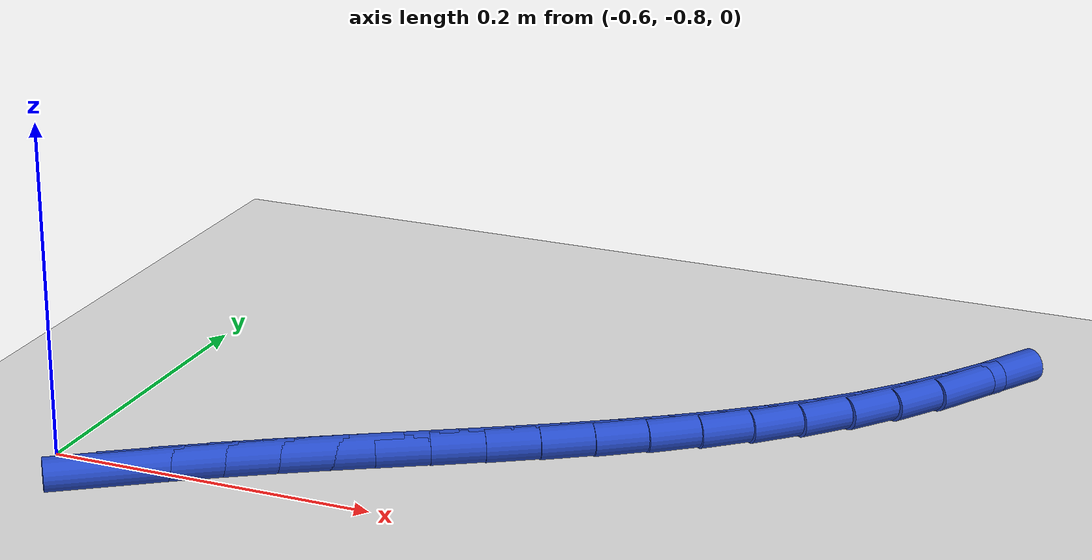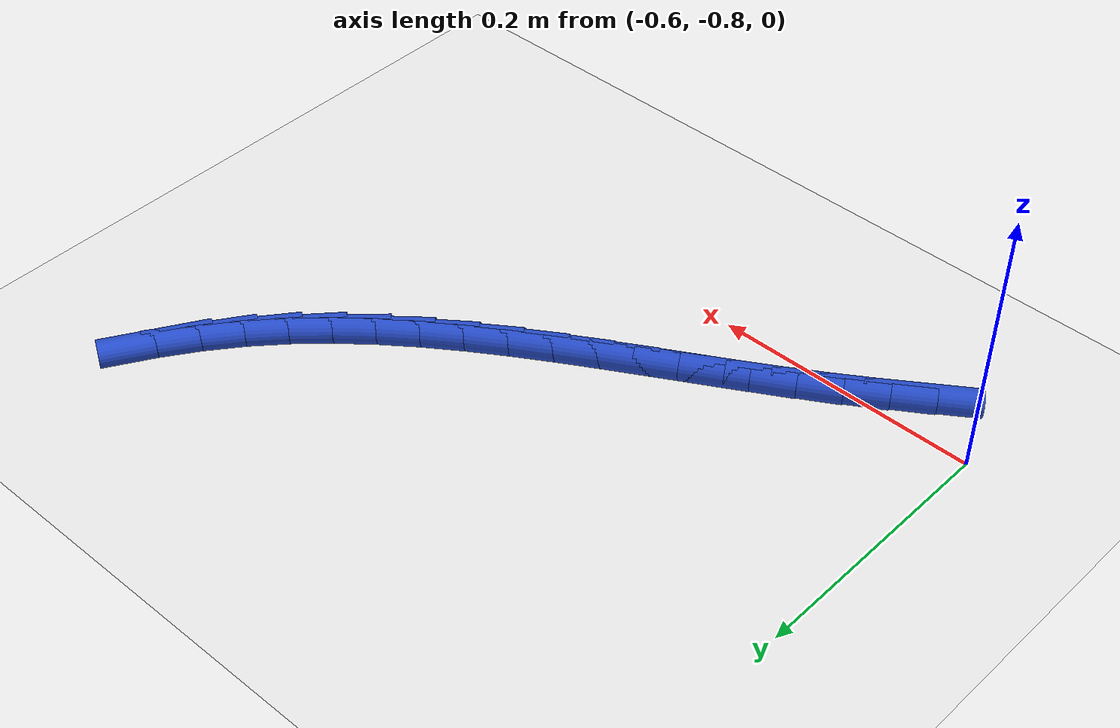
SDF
<sdf version="1.6">
 <world name="default">
  <model name="ground_plane">
   <static>1</static>
   <link name="link">
    <collision name="collision">
     <geometry><plane><normal>0 0 1</normal><size>100 100</size></plane></geometry>
     <surface><friction><ode><mu>100</mu><mu2>50</mu2></ode></friction></surface>
    </collision>
    <visual name="visual">
     <cast_shadows>0</cast_shadows>
     <geometry><plane><normal>0 0 1</normal><size>100 100</size></plane></geometry>
     <material>
      <script><uri>file://media/materials/scripts/gazebo.material</uri><name>Gazebo/WhiteGlow</name></script>
     </material>
    </visual>
   </link>
  </model>
  <model name="line">
   <link name="link_176">
    <pose>-0.5472563951485422 -0.8230618892427836 0.01 0 1.57 0.6076557372885221</pose>
    <collision name="collision">
     <geometry><cylinder><radius>0.01</radius><length>0.08</length></cylinder></geometry>
    </collision>
    <visual name="visual">
     <material>
      <script><name>Gazebo/Blue</name><uri>file://media/materials/scripts/gazebo.material</uri></script>
     </material>
     <geometry><cylinder><radius>0.01</radius><length>0.08</length></cylinder></geometry>
    </visual>
   </link>
   <link name="link_177">
    <pose>-0.5221000698455479 -0.8055672961848139 0.01 0 1.57 0.5861738786591072</pose>
    <collision name="collision">
     <geometry><cylinder><radius>0.01</radius><length>0.08</length></cylinder></geometry>
    </collision>
    <visual name="visual">
     <material>
      <script><name>Gazebo/Blue</name><uri>file://media/materials/scripts/gazebo.material</uri></script>
     </material>
     <geometry><cylinder><radius>0.01</radius><length>0.08</length></cylinder></geometry>
    </visual>
   </link>
   <link name="link_178">
    <pose>-0.4964718508883398 -0.78854943124601 0.01 0 1.57 0.5632056248530586</pose>
    <collision name="collision">
     <geometry><cylinder><radius>0.01</radius><length>0.08</length></cylinder></geometry>
    </collision>
    <visual name="visual">
     <material>
      <script><name>Gazebo/Blue</name><uri>file://media/materials/scripts/gazebo.material</uri></script>
     </material>
     <geometry><cylinder><radius>0.01</radius><length>0.08</length></cylinder></geometry>
    </visual>
   </link>
   <link name="link_179">
    <pose>-0.4702750661805559 -0.7720081476950146 0.01 0 1.57 0.5441176105116118</pose>
    <collision name="collision">
     <geometry><cylinder><radius>0.01</radius><length>0.08</length></cylinder></geometry>
    </collision>
    <visual name="visual">
     <material>
      <script><name>Gazebo/Blue</name><uri>file://media/materials/scripts/gazebo.material</uri></script>
     </material>
     <geometry><cylinder><radius>0.01</radius><length>0.08</length></cylinder></geometry>
    </visual>
   </link>
   <link name="link_180">
    <pose>-0.4435709468761633 -0.7558510703297157 0.01 0 1.57 0.5326383633046919</pose>
    <collision name="collision">
     <geometry><cylinder><radius>0.01</radius><length>0.08</length></cylinder></geometry>
    </collision>
    <visual name="visual">
     <material>
      <script><name>Gazebo/Blue</name><uri>file://media/materials/scripts/gazebo.material</uri></script>
     </material>
     <geometry><cylinder><radius>0.01</radius><length>0.08</length></cylinder></geometry>
    </visual>
   </link>
   <link name="link_181">
    <pose>-0.41653908614886964 -0.7399166908044255 0.01 0 1.57 0.5286653360484959</pose>
    <collision name="collision">
     <geometry><cylinder><radius>0.01</radius><length>0.08</length></cylinder></geometry>
    </collision>
    <visual name="visual">
     <material>
      <script><name>Gazebo/Blue</name><uri>file://media/materials/scripts/gazebo.material</uri></script>
     </material>
     <geometry><cylinder><radius>0.01</radius><length>0.08</length></cylinder></geometry>
    </visual>
   </link>
   <link name="link_182">
    <pose>-0.38936194304490546 -0.7240418268684571 0.01 0 1.57 0.5321029615938662</pose>
    <collision name="collision">
     <geometry><cylinder><radius>0.01</radius><length>0.08</length></cylinder></geometry>
    </collision>
    <visual name="visual">
     <material>
      <script><name>Gazebo/Blue</name><uri>file://media/materials/scripts/gazebo.material</uri></script>
     </material>
     <geometry><cylinder><radius>0.01</radius><length>0.08</length></cylinder></geometry>
    </visual>
   </link>
   <link name="link_183">
    <pose>-0.3622219766104998 -0.7080632962711226 0.01 0 1.57 0.5429607351287972</pose>
    <collision name="collision">
     <geometry><cylinder><radius>0.01</radius><length>0.08</length></cylinder></geometry>
    </collision>
    <visual name="visual">
     <material>
      <script><name>Gazebo/Blue</name><uri>file://media/materials/scripts/gazebo.material</uri></script>
     </material>
     <geometry><cylinder><radius>0.01</radius><length>0.08</length></cylinder></geometry>
    </visual>
   </link>
   <link name="link_184">
    <pose>-0.33530164589188416 -0.691817916761736 0.01 0 1.57 0.56134733736515</pose>
    <collision name="collision">
     <geometry><cylinder><radius>0.01</radius><length>0.08</length></cylinder></geometry>
    </collision>
    <visual name="visual">
     <material>
      <script><name>Gazebo/Blue</name><uri>file://media/materials/scripts/gazebo.material</uri></script>
     </material>
     <geometry><cylinder><radius>0.01</radius><length>0.08</length></cylinder></geometry>
    </visual>
   </link>
   <link name="link_185">
    <pose>-0.3087834099352879 -0.6751425060896097 0.01 0 1.57 0.5874552208932098</pose>
    <collision name="collision">
     <geometry><cylinder><radius>0.01</radius><length>0.08</length></cylinder></geometry>
    </collision>
    <visual name="visual">
     <material>
      <script><name>Gazebo/Blue</name><uri>file://media/materials/scripts/gazebo.material</uri></script>
     </material>
     <geometry><cylinder><radius>0.01</radius><length>0.08</length></cylinder></geometry>
    </visual>
   </link>
   <link name="link_186">
    <pose>-0.282849727786941 -0.6578738820040566 0.01 0 1.57 0.6215330088379123</pose>
    <collision name="collision">
     <geometry><cylinder><radius>0.01</radius><length>0.08</length></cylinder></geometry>
    </collision>
    <visual name="visual">
     <material>
      <script><name>Gazebo/Blue</name><uri>file://media/materials/scripts/gazebo.material</uri></script>
     </material>
     <geometry><cylinder><radius>0.01</radius><length>0.08</length></cylinder></geometry>
    </visual>
   </link>
   <link name="link_187">
    <pose>-0.25768305849307355 -0.6398488622543899 0.01 0 1.57 0.6638414778156745</pose>
    <collision name="collision">
     <geometry><cylinder><radius>0.01</radius><length>0.08</length></cylinder></geometry>
    </collision>
    <visual name="visual">
     <material>
      <script><name>Gazebo/Blue</name><uri>file://media/materials/scripts/gazebo.material</uri></script>
     </material>
     <geometry><cylinder><radius>0.01</radius><length>0.08</length></cylinder></geometry>
    </visual>
   </link>
   <link name="link_188">
    <pose>-0.23346586109991552 -0.6209042645899219 0.01 0 1.57 0.7145883682133422</pose>
    <collision name="collision">
     <geometry><cylinder><radius>0.01</radius><length>0.08</length></cylinder></geometry>
    </collision>
    <visual name="visual">
     <material>
      <script><name>Gazebo/Blue</name><uri>file://media/materials/scripts/gazebo.material</uri></script>
     </material>
     <geometry><cylinder><radius>0.01</radius><length>0.08</length></cylinder></geometry>
    </visual>
   </link>
   <link name="link_189">
    <pose>-0.2103805946536965 -0.6008769067599654 0.01 0 1.57 0.7738390145452975</pose>
    <collision name="collision">
     <geometry><cylinder><radius>0.01</radius><length>0.08</length></cylinder></geometry>
    </collision>
    <visual name="visual">
     <material>
      <script><name>Gazebo/Blue</name><uri>file://media/materials/scripts/gazebo.material</uri></script>
     </material>
     <geometry><cylinder><radius>0.01</radius><length>0.08</length></cylinder></geometry>
    </visual>
   </link>
   <link name="link_190">
    <pose>-0.18860971820064762 -0.5796036065138342 0.01 0 1.57 0.8413576988372222</pose>
    <collision name="collision">
     <geometry><cylinder><radius>0.01</radius><length>0.08</length></cylinder></geometry>
    </collision>
    <visual name="visual">
     <material>
      <script><name>Gazebo/Blue</name><uri>file://media/materials/scripts/gazebo.material</uri></script>
     </material>
     <geometry><cylinder><radius>0.01</radius><length>0.08</length></cylinder></geometry>
    </visual>
   </link>
   <link name="link_191">
    <pose>-0.1683347512302587 -0.556922314970859 0.01 0 1.57 0.9121102316453341</pose>
    <collision name="collision">
     <geometry><cylinder><radius>0.01</radius><length>0.08</length></cylinder></geometry>
    </collision>
    <visual name="visual">
     <material>
      <script><name>Gazebo/Blue</name><uri>file://media/materials/scripts/gazebo.material</uri></script>
     </material>
     <geometry><cylinder><radius>0.01</radius><length>0.08</length></cylinder></geometry>
    </visual>
   </link>
   <link name="link_192">
    <pose>-0.14964772775936896 -0.5327789279305185 0.01 0 1.57 0.9775619943595708</pose>
    <collision name="collision">
     <geometry><cylinder><radius>0.01</radius><length>0.08</length></cylinder></geometry>
    </collision>
    <visual name="visual">
     <material>
      <script><name>Gazebo/Blue</name><uri>file://media/materials/scripts/gazebo.material</uri></script>
     </material>
     <geometry><cylinder><radius>0.01</radius><length>0.08</length></cylinder></geometry>
    </visual>
   </link>
   <link name="link_193">
    <pose>-0.13247858622688038 -0.5073148741072501 0.01 0 1.57 1.0368980796739444</pose>
    <collision name="collision">
     <geometry><cylinder><radius>0.01</radius><length>0.08</length></cylinder></geometry>
    </collision>
    <visual name="visual">
     <material>
      <script><name>Gazebo/Blue</name><uri>file://media/materials/scripts/gazebo.material</uri></script>
     </material>
     <geometry><cylinder><radius>0.01</radius><length>0.08</length></cylinder></geometry>
    </visual>
   </link>
  </model>
 </world>
</sdf>
